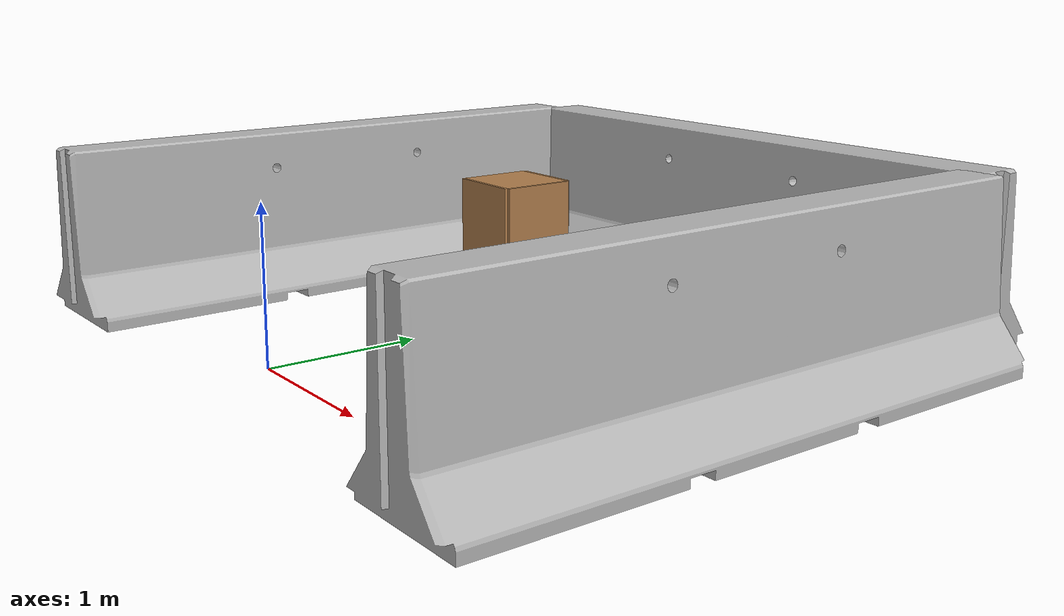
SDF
<sdf version="1.6">
 <world name="default">
  <model name="jersey_barrier">
   <static>1</static>
   <link name="link">
    <visual name="visual">
     <geometry>
      <mesh><uri>model://jersey_barrier/meshes/jersey_barrier.dae</uri><scale>1 1 1</scale></mesh>
     </geometry>
    </visual>
    <collision name="upright">
     <pose>0 0 0.5715 0 -0 0</pose>
     <geometry><box><size>4.06542 0.3063 1.143</size></box></geometry>
    </collision>
    <collision name="base">
     <pose>0 0 0.032258 0 -0 0</pose>
     <geometry><box><size>4.06542 0.8107 0.064516</size></box></geometry>
    </collision>
    <collision name="base2">
     <pose>0 0 0.1 0 -0 0</pose>
     <geometry><box><size>4.06542 0.65 0.1</size></box></geometry>
    </collision>
    <collision name="base3">
     <pose>0 0 0.2 0 -0 0</pose>
     <geometry><box><size>4.06542 0.5 0.1</size></box></geometry>
    </collision>
    <collision name="left-angle">
     <pose>0 -0.224 0.2401 0.9 -0 0</pose>
     <geometry><box><size>4.06542 0.5 0.064516</size></box></geometry>
    </collision>
    <collision name="right-angle">
     <pose>0 0.224 0.2401 -0.9 0 0</pose>
     <geometry><box><size>4.06542 0.5 0.064516</size></box></geometry>
    </collision>
    <velocity_decay><linear>0</linear><angular>0</angular></velocity_decay>
   </link>
   <pose>-1.73944 1.46495 0 0 0 -1.55511</pose>
  </model>
  <model name="jersey_barrier_clone_0">
   <static>1</static>
   <link name="link">
    <visual name="visual">
     <geometry>
      <mesh><uri>model://jersey_barrier/meshes/jersey_barrier.dae</uri><scale>1 1 1</scale></mesh>
     </geometry>
    </visual>
    <collision name="upright">
     <pose>0 0 0.5715 0 -0 0</pose>
     <geometry><box><size>4.06542 0.3063 1.143</size></box></geometry>
    </collision>
    <collision name="base">
     <pose>0 0 0.032258 0 -0 0</pose>
     <geometry><box><size>4.06542 0.8107 0.064516</size></box></geometry>
    </collision>
    <collision name="base2">
     <pose>0 0 0.1 0 -0 0</pose>
     <geometry><box><size>4.06542 0.65 0.1</size></box></geometry>
    </collision>
    <collision name="base3">
     <pose>0 0 0.2 0 -0 0</pose>
     <geometry><box><size>4.06542 0.5 0.1</size></box></geometry>
    </collision>
    <collision name="left-angle">
     <pose>0 -0.224 0.2401 0.9 -0 0</pose>
     <geometry><box><size>4.06542 0.5 0.064516</size></box></geometry>
    </collision>
    <collision name="right-angle">
     <pose>0 0.224 0.2401 -0.9 0 0</pose>
     <geometry><box><size>4.06542 0.5 0.064516</size></box></geometry>
    </collision>
    <velocity_decay><linear>0</linear><angular>0</angular></velocity_decay>
   </link>
   <pose>0.379561 3.55588 0 0 -0 0.009076</pose>
  </model>
  <model name="jersey_barrier_clone_clone">
   <static>1</static>
   <link name="link">
    <visual name="visual">
     <geometry>
      <mesh><uri>model://jersey_barrier/meshes/jersey_barrier.dae</uri><scale>1 1 1</scale></mesh>
     </geometry>
    </visual>
    <collision name="upright">
     <pose>0 0 0.5715 0 -0 0</pose>
     <geometry><box><size>4.06542 0.3063 1.143</size></box></geometry>
    </collision>
    <collision name="base">
     <pose>0 0 0.032258 0 -0 0</pose>
     <geometry><box><size>4.06542 0.8107 0.064516</size></box></geometry>
    </collision>
    <collision name="base2">
     <pose>0 0 0.1 0 -0 0</pose>
     <geometry><box><size>4.06542 0.65 0.1</size></box></geometry>
    </collision>
    <collision name="base3">
     <pose>0 0 0.2 0 -0 0</pose>
     <geometry><box><size>4.06542 0.5 0.1</size></box></geometry>
    </collision>
    <collision name="left-angle">
     <pose>0 -0.224 0.2401 0.9 -0 0</pose>
     <geometry><box><size>4.06542 0.5 0.064516</size></box></geometry>
    </collision>
    <collision name="right-angle">
     <pose>0 0.224 0.2401 -0.9 0 0</pose>
     <geometry><box><size>4.06542 0.5 0.064516</size></box></geometry>
    </collision>
    <velocity_decay><linear>0</linear><angular>0</angular></velocity_decay>
   </link>
   <pose>2.33213 1.44589 0 0 0 -1.57346</pose>
  </model>
  <model name="cabinet">
   <static>1</static>
   <link name="cabinet_bottom_plate">
    <inertial>
     <pose>0 0 -1 0 -0 0</pose>
     <inertia><ixx>2.05</ixx><ixy>0</ixy><ixz>0</ixz><iyy>2.05</iyy><iyz>0</iyz><izz>2.05</izz></inertia>
     <mass>25</mass>
    </inertial>
    <collision name="cabinet_bottom_plate_geom">
     <pose>0 0 0.01 0 -0 0</pose>
     <geometry><box><size>0.45 0.45 0.02</size></box></geometry>
    </collision>
    <visual name="cabinet_bottom_plate_geom_visual">
     <pose>0 0 0.01 0 -0 0</pose>
     <geometry><box><size>0.45 0.45 0.02</size></box></geometry>
     <material>
      <script><uri>file://media/materials/scripts/gazebo.material</uri><name>Gazebo/Wood</name></script>
     </material>
    </visual>
    <collision name="cabinet_bottom_plate_geom_cabinet_back_plate">
     <pose>0.235 0 0.51 0 -0 0</pose>
     <geometry><box><size>0.02 0.45 1.02</size></box></geometry>
    </collision>
    <visual name="cabinet_bottom_plate_geom_cabinet_back_plate_visual">
     <pose>0.235 0 0.51 0 -0 0</pose>
     <geometry><box><size>0.02 0.45 1.02</size></box></geometry>
     <material>
      <script><uri>file://media/materials/scripts/gazebo.material</uri><name>Gazebo/Wood</name></script>
     </material>
    </visual>
    <collision name="cabinet_bottom_plate_geom_cabinet_left_plate">
     <pose>0 0.235 0.51 0 -0 0</pose>
     <geometry><box><size>0.45 0.02 1.02</size></box></geometry>
    </collision>
    <visual name="cabinet_bottom_plate_geom_cabinet_left_plate_visual">
     <pose>0 0.235 0.51 0 -0 0</pose>
     <geometry><box><size>0.45 0.02 1.02</size></box></geometry>
     <material>
      <script><uri>file://media/materials/scripts/gazebo.material</uri><name>Gazebo/Wood</name></script>
     </material>
    </visual>
    <collision name="cabinet_bottom_plate_geom_cabinet_middle_plate">
     <pose>0 0 0.51 0 -0 0</pose>
     <geometry><box><size>0.45 0.45 0.02</size></box></geometry>
    </collision>
    <visual name="cabinet_bottom_plate_geom_cabinet_middle_plate_visual">
     <pose>0 0 0.51 0 -0 0</pose>
     <geometry><box><size>0.45 0.45 0.02</size></box></geometry>
     <material>
      <script><uri>file://media/materials/scripts/gazebo.material</uri><name>Gazebo/Wood</name></script>
     </material>
    </visual>
    <collision name="cabinet_bottom_plate_geom_cabinet_right_plate">
     <pose>0 -0.235 0.51 0 -0 0</pose>
     <geometry><box><size>0.45 0.02 1.02</size></box></geometry>
    </collision>
    <visual name="cabinet_bottom_plate_geom_cabinet_right_plate_visual">
     <pose>0 -0.235 0.51 0 -0 0</pose>
     <geometry><box><size>0.45 0.02 1.02</size></box></geometry>
     <material>
      <script><uri>file://media/materials/scripts/gazebo.material</uri><name>Gazebo/Wood</name></script>
     </material>
    </visual>
    <collision name="cabinet_bottom_plate_geom_cabinet_top_plate">
     <pose>0 0 1.01 0 -0 0</pose>
     <geometry><box><size>0.45 0.45 0.02</size></box></geometry>
    </collision>
    <visual name="cabinet_bottom_plate_geom_cabinet_top_plate_visual">
     <pose>0 0 1.01 0 -0 0</pose>
     <geometry><box><size>0.45 0.45 0.02</size></box></geometry>
     <material>
      <script><uri>file://media/materials/scripts/gazebo.material</uri><name>Gazebo/Wood</name></script>
     </material>
    </visual>
   </link>
   <pose>0.349808 1.55309 0 0 -0 0</pose>
  </model>
 </world>
</sdf>
